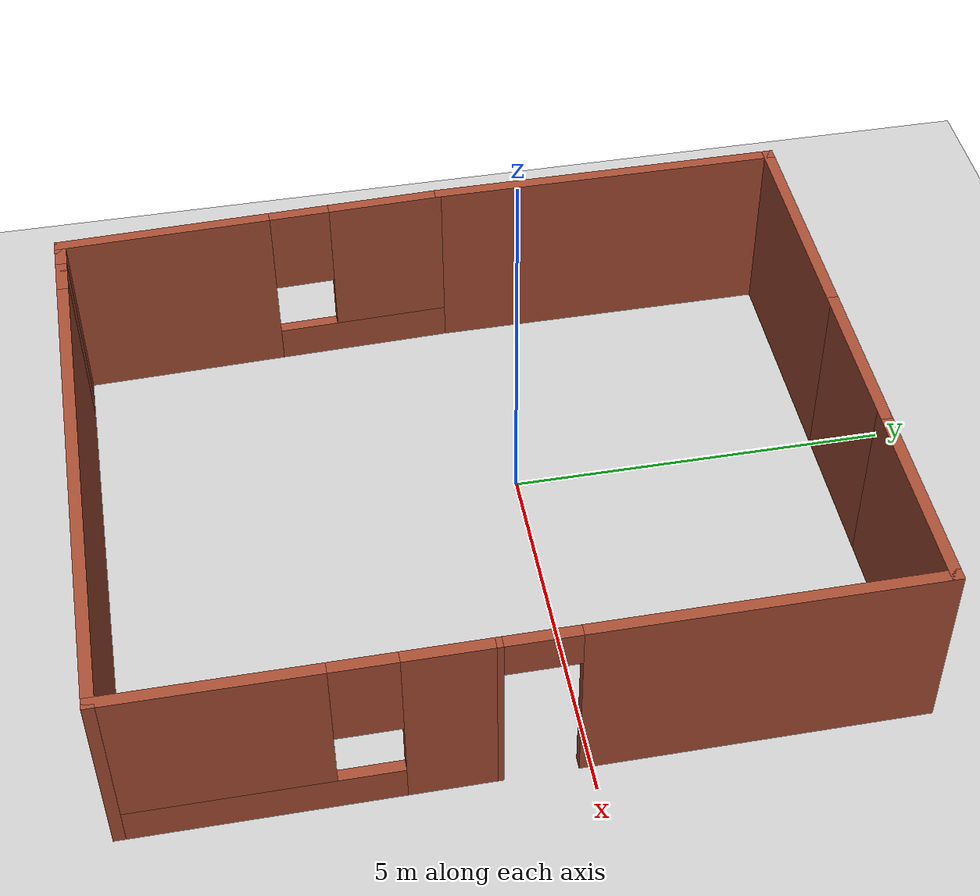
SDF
<sdf version="1.6">
 <world name="default">
  <light name="sun" type="directional">
   <pose>0 0 10 0 -0 0</pose>
   <diffuse>0.8 0.8 0.8 1</diffuse>
   <specular>0.2 0.2 0.2 1</specular>
   <attenuation>
    <range>1000</range>
    <constant>0.9</constant>
    <linear>0.01</linear>
    <quadratic>0.001</quadratic>
   </attenuation>
   <direction>-0.5 0.1 -0.9</direction>
  </light>
  <model name="ground_plane">
   <static>1</static>
   <link name="link">
    <collision name="collision">
     <geometry><plane><normal>0 0 1</normal><size>100 100</size></plane></geometry>
     <surface>
      <contact><collide_bitmask>65535</collide_bitmask></contact>
      <friction><ode><mu>100</mu><mu2>50</mu2></ode></friction>
     </surface>
    </collision>
    <visual name="visual">
     <cast_shadows>0</cast_shadows>
     <geometry><plane><normal>0 0 1</normal><size>100 100</size></plane></geometry>
     <material>
      <script><uri>file://media/materials/scripts/gazebo.material</uri><name>Gazebo/Grey</name></script>
     </material>
    </visual>
   </link>
  </model>
  <gravity>0 0 -9.8</gravity>
  <magnetic_field>6e-06 2.3e-05 -4.2e-05</magnetic_field>
  <atmosphere type="adiabatic"/>
  <physics name="default_physics" default="0" type="ode">
   <max_step_size>0.001</max_step_size>
   <real_time_factor>1</real_time_factor>
   <real_time_update_rate>1000</real_time_update_rate>
  </physics>
  <scene><ambient>0.4 0.4 0.4 1</ambient><background>0.7 0.7 0.7 1</background><shadows>1</shadows></scene>
  <spherical_coordinates>
   <surface_model>EARTH_WGS84</surface_model>
   <latitude_deg>0</latitude_deg>
   <longitude_deg>0</longitude_deg>
   <elevation>0</elevation>
   <heading_deg>0</heading_deg>
  </spherical_coordinates>
  <model name="Untitled">
   <pose>0.698914 -0.701086 0 0 -0 0</pose>
   <link name="Wall_10">
    <collision name="Wall_10_Collision">
     <geometry><box><size>4.75 0.15 2.5</size></box></geometry>
     <pose>0 0 1.25 0 -0 0</pose>
    </collision>
    <visual name="Wall_10_Visual">
     <pose>0 0 1.25 0 -0 0</pose>
     <geometry><box><size>4.75 0.15 2.5</size></box></geometry>
     <material>
      <script><uri>file://media/materials/scripts/gazebo.material</uri><name>Gazebo/Bricks</name></script>
      <ambient>1 1 1 1</ambient>
     </material>
     <meta><layer>0</layer></meta>
    </visual>
    <pose>-3.89891 2.55109 0 0 -0 1.5708</pose>
   </link>
   <link name="Wall_11">
    <collision name="Wall_11_Collision">
     <geometry><box><size>3.25 0.15 2.5</size></box></geometry>
     <pose>0 0 1.25 0 -0 0</pose>
    </collision>
    <visual name="Wall_11_Visual">
     <pose>0 0 1.25 0 -0 0</pose>
     <geometry><box><size>3.25 0.15 2.5</size></box></geometry>
     <material>
      <script><uri>file://media/materials/scripts/gazebo.material</uri><name>Gazebo/Bricks</name></script>
      <ambient>1 1 1 1</ambient>
     </material>
     <meta><layer>0</layer></meta>
    </visual>
    <pose>-2.34891 4.85109 0 0 -0 0</pose>
   </link>
   <link name="Wall_12">
    <collision name="Wall_12_Collision">
     <geometry><box><size>2.25 0.15 2.5</size></box></geometry>
     <pose>0 0 1.25 0 -0 0</pose>
    </collision>
    <visual name="Wall_12_Visual">
     <pose>0 0 1.25 0 -0 0</pose>
     <geometry><box><size>2.25 0.15 2.5</size></box></geometry>
     <material>
      <script><uri>file://media/materials/scripts/gazebo.material</uri><name>Gazebo/Bricks</name></script>
      <ambient>1 1 1 1</ambient>
     </material>
     <meta><layer>0</layer></meta>
    </visual>
    <pose>0.251086 4.85109 0 0 -0 0</pose>
   </link>
   <link name="Wall_13">
    <collision name="Wall_13_Collision">
     <geometry><box><size>2.75 0.15 2.5</size></box></geometry>
     <pose>0 0 1.25 0 -0 0</pose>
    </collision>
    <visual name="Wall_13_Visual">
     <pose>0 0 1.25 0 -0 0</pose>
     <geometry><box><size>2.75 0.15 2.5</size></box></geometry>
     <material>
      <script><uri>file://media/materials/scripts/gazebo.material</uri><name>Gazebo/Bricks</name></script>
      <ambient>1 1 1 1</ambient>
     </material>
     <meta><layer>0</layer></meta>
    </visual>
    <pose>2.60109 4.85109 0 0 -0 0</pose>
   </link>
   <link name="Wall_14">
    <pose>3.90109 2.17609 0 0 0 -1.5708</pose>
    <visual name="Wall_14_Visual_0">
     <pose>-0.563076 0 1.25 0 -0 0</pose>
     <geometry><box><size>4.37385 0.15 2.5</size></box></geometry>
     <material>
      <script><uri>file://media/materials/scripts/gazebo.material</uri><name>Gazebo/Bricks</name></script>
      <ambient>1 1 1 1</ambient>
     </material>
     <meta><layer>0</layer></meta>
    </visual>
    <collision name="Wall_14_Collision_0">
     <geometry><box><size>4.37385 0.15 2.5</size></box></geometry>
     <pose>-0.563076 0 1.25 0 -0 0</pose>
    </collision>
    <visual name="Wall_14_Visual_1">
     <pose>2.63692 0 1.25 0 -0 0</pose>
     <geometry><box><size>0.226153 0.15 2.5</size></box></geometry>
     <material>
      <script><uri>file://media/materials/scripts/gazebo.material</uri><name>Gazebo/Bricks</name></script>
      <ambient>1 1 1 1</ambient>
     </material>
     <meta><layer>0</layer></meta>
    </visual>
    <collision name="Wall_14_Collision_1">
     <geometry><box><size>0.226153 0.15 2.5</size></box></geometry>
     <pose>2.63692 0 1.25 0 -0 0</pose>
    </collision>
    <visual name="Wall_14_Visual_2">
     <pose>2.07385 0 2.25 0 -0 0</pose>
     <geometry><box><size>0.9 0.15 0.5</size></box></geometry>
     <material>
      <script><uri>file://media/materials/scripts/gazebo.material</uri><name>Gazebo/Bricks</name></script>
      <ambient>1 1 1 1</ambient>
     </material>
     <meta><layer>0</layer></meta>
    </visual>
    <collision name="Wall_14_Collision_2">
     <geometry><box><size>0.9 0.15 0.5</size></box></geometry>
     <pose>2.07385 0 2.25 0 -0 0</pose>
    </collision>
   </link>
   <link name="Wall_15">
    <pose>3.90109 -2.67391 0 0 0 -1.5708</pose>
    <visual name="Wall_15_Visual_0">
     <pose>-1.71614 0 1.25 0 -0 0</pose>
     <geometry><box><size>1.06771 0.15 2.5</size></box></geometry>
     <material>
      <script><uri>file://media/materials/scripts/gazebo.material</uri><name>Gazebo/Bricks</name></script>
      <ambient>1 1 1 1</ambient>
     </material>
     <meta><layer>0</layer></meta>
    </visual>
    <collision name="Wall_15_Collision_0">
     <geometry><box><size>1.06771 0.15 2.5</size></box></geometry>
     <pose>-1.71614 0 1.25 0 -0 0</pose>
    </collision>
    <visual name="Wall_15_Visual_1">
     <pose>0.533857 0 0.25 0 -0 0</pose>
     <geometry><box><size>3.43229 0.15 0.5</size></box></geometry>
     <material>
      <script><uri>file://media/materials/scripts/gazebo.material</uri><name>Gazebo/Bricks</name></script>
      <ambient>1 1 1 1</ambient>
     </material>
     <meta><layer>0</layer></meta>
    </visual>
    <collision name="Wall_15_Collision_1">
     <geometry><box><size>3.43229 0.15 0.5</size></box></geometry>
     <pose>0.533857 0 0.25 0 -0 0</pose>
    </collision>
    <visual name="Wall_15_Visual_2">
     <pose>0.933857 0 1.5 0 -0 0</pose>
     <geometry><box><size>2.63229 0.15 2</size></box></geometry>
     <material>
      <script><uri>file://media/materials/scripts/gazebo.material</uri><name>Gazebo/Bricks</name></script>
      <ambient>1 1 1 1</ambient>
     </material>
     <meta><layer>0</layer></meta>
    </visual>
    <collision name="Wall_15_Collision_2">
     <geometry><box><size>2.63229 0.15 2</size></box></geometry>
     <pose>0.933857 0 1.5 0 -0 0</pose>
    </collision>
    <visual name="Wall_15_Visual_3">
     <pose>-0.782286 0 1.9 0 -0 0</pose>
     <geometry><box><size>0.8 0.15 1.2</size></box></geometry>
     <material>
      <script><uri>file://media/materials/scripts/gazebo.material</uri><name>Gazebo/Bricks</name></script>
      <ambient>1 1 1 1</ambient>
     </material>
     <meta><layer>0</layer></meta>
    </visual>
    <collision name="Wall_15_Collision_3">
     <geometry><box><size>0.8 0.15 1.2</size></box></geometry>
     <pose>-0.782286 0 1.9 0 -0 0</pose>
    </collision>
   </link>
   <link name="Wall_16">
    <collision name="Wall_16_Collision">
     <geometry><box><size>7 0.15 2.5</size></box></geometry>
     <pose>0 0 1.25 0 -0 0</pose>
    </collision>
    <visual name="Wall_16_Visual">
     <pose>0 0 1.25 0 -0 0</pose>
     <geometry><box><size>7 0.15 2.5</size></box></geometry>
     <material>
      <script><uri>file://media/materials/scripts/gazebo.material</uri><name>Gazebo/Bricks</name></script>
      <ambient>1 1 1 1</ambient>
     </material>
     <meta><layer>0</layer></meta>
    </visual>
    <pose>0.476086 -4.84891 0 0 -0 3.14159</pose>
   </link>
   <link name="Wall_17">
    <collision name="Wall_17_Collision">
     <geometry><box><size>0.5 0.15 2.5</size></box></geometry>
     <pose>0 0 1.25 0 -0 0</pose>
    </collision>
    <visual name="Wall_17_Visual">
     <pose>0 0 1.25 0 -0 0</pose>
     <geometry><box><size>0.5 0.15 2.5</size></box></geometry>
     <material>
      <script><uri>file://media/materials/scripts/gazebo.material</uri><name>Gazebo/Bricks</name></script>
      <ambient>1 1 1 1</ambient>
     </material>
     <meta><layer>0</layer></meta>
    </visual>
    <pose>-3.12391 -4.84891 0 0 -0 3.14159</pose>
   </link>
   <link name="Wall_18">
    <collision name="Wall_18_Collision">
     <geometry><box><size>0.5 0.15 2.5</size></box></geometry>
     <pose>0 0 1.25 0 -0 0</pose>
    </collision>
    <visual name="Wall_18_Visual">
     <pose>0 0 1.25 0 -0 0</pose>
     <geometry><box><size>0.5 0.15 2.5</size></box></geometry>
     <material>
      <script><uri>file://media/materials/scripts/gazebo.material</uri><name>Gazebo/Bricks</name></script>
      <ambient>1 1 1 1</ambient>
     </material>
     <meta><layer>0</layer></meta>
    </visual>
    <pose>-3.47391 -4.84891 0 0 -0 3.14159</pose>
   </link>
   <link name="Wall_19">
    <collision name="Wall_19_Collision">
     <geometry><box><size>0.25 0.15 2.5</size></box></geometry>
     <pose>0 0 1.25 0 -0 0</pose>
    </collision>
    <visual name="Wall_19_Visual">
     <pose>0 0 1.25 0 -0 0</pose>
     <geometry><box><size>0.25 0.15 2.5</size></box></geometry>
     <material>
      <script><uri>file://media/materials/scripts/gazebo.material</uri><name>Gazebo/Bricks</name></script>
      <ambient>1 1 1 1</ambient>
     </material>
     <meta><layer>0</layer></meta>
    </visual>
    <pose>-3.69891 -4.84891 0 0 -0 3.14159</pose>
   </link>
   <link name="Wall_20">
    <pose>-3.82391 -2.29891 0 0 -0 1.6002</pose>
    <visual name="Wall_20_Visual_0">
     <pose>-1.20381 0 1.25 0 -0 0</pose>
     <geometry><box><size>2.84459 0.15 2.5</size></box></geometry>
     <material>
      <script><uri>file://media/materials/scripts/gazebo.material</uri><name>Gazebo/Bricks</name></script>
      <ambient>1 1 1 1</ambient>
     </material>
     <meta><layer>0</layer></meta>
    </visual>
    <collision name="Wall_20_Collision_0">
     <geometry><box><size>2.84459 0.15 2.5</size></box></geometry>
     <pose>-1.20381 0 1.25 0 -0 0</pose>
    </collision>
    <visual name="Wall_20_Visual_1">
     <pose>1.42229 0 0.25 0 -0 0</pose>
     <geometry><box><size>2.40762 0.15 0.5</size></box></geometry>
     <material>
      <script><uri>file://media/materials/scripts/gazebo.material</uri><name>Gazebo/Bricks</name></script>
      <ambient>1 1 1 1</ambient>
     </material>
     <meta><layer>0</layer></meta>
    </visual>
    <collision name="Wall_20_Collision_1">
     <geometry><box><size>2.40762 0.15 0.5</size></box></geometry>
     <pose>1.42229 0 0.25 0 -0 0</pose>
    </collision>
    <visual name="Wall_20_Visual_2">
     <pose>1.82229 0 1.5 0 -0 0</pose>
     <geometry><box><size>1.60762 0.15 2</size></box></geometry>
     <material>
      <script><uri>file://media/materials/scripts/gazebo.material</uri><name>Gazebo/Bricks</name></script>
      <ambient>1 1 1 1</ambient>
     </material>
     <meta><layer>0</layer></meta>
    </visual>
    <collision name="Wall_20_Collision_2">
     <geometry><box><size>1.60762 0.15 2</size></box></geometry>
     <pose>1.82229 0 1.5 0 -0 0</pose>
    </collision>
    <visual name="Wall_20_Visual_3">
     <pose>0.618483 0 1.9 0 -0 0</pose>
     <geometry><box><size>0.8 0.15 1.2</size></box></geometry>
     <material>
      <script><uri>file://media/materials/scripts/gazebo.material</uri><name>Gazebo/Bricks</name></script>
      <ambient>1 1 1 1</ambient>
     </material>
     <meta><layer>0</layer></meta>
    </visual>
    <collision name="Wall_20_Collision_3">
     <geometry><box><size>0.8 0.15 1.2</size></box></geometry>
     <pose>0.618483 0 1.9 0 -0 0</pose>
    </collision>
   </link>
   <static>1</static>
  </model>
 </world>
</sdf>
